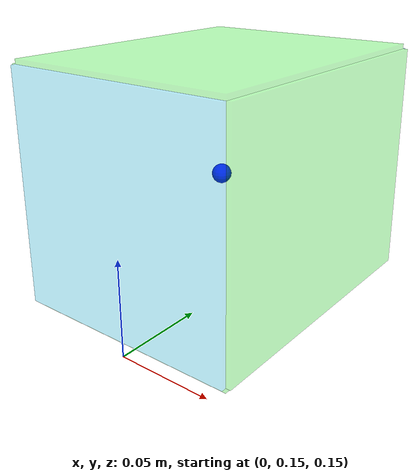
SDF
<?xml version="1.0"?>
<sdf version="1.8">
  <model name="drawing_surface">
    <!-- 3D Workspace Visualization Box -->
    <pose>0 0 0 0 0 0</pose>
    <static>true</static>

    <!-- Workspace bounds (green wireframe) -->

    <!-- Top border (Z = 28cm) -->
    <link name="top_border">
      <pose>0 0.225 0.28 0 0 0</pose>
      <visual name="top_border_visual">
        <geometry>
          <box>
            <size>0.12 0.15 0.005</size>  <!-- 12cm x 15cm x 0.5cm -->
          </box>
        </geometry>
        <material>
          <ambient>0.0 1.0 0.0 0.3</ambient>
          <diffuse>0.0 1.0 0.0 0.3</diffuse>
        </material>
      </visual>
    </link>

    <!-- Bottom border (Z = 16cm) -->
    <link name="bottom_border">
      <pose>0 0.225 0.16 0 0 0</pose>
      <visual name="bottom_border_visual">
        <geometry>
          <box>
            <size>0.12 0.15 0.005</size>
          </box>
        </geometry>
        <material>
          <ambient>0.0 1.0 0.0 0.3</ambient>
          <diffuse>0.0 1.0 0.0 0.3</diffuse>
        </material>
      </visual>
    </link>

    <!-- Left border (X = -6cm) -->
    <link name="left_border">
      <pose>-0.06 0.225 0.22 0 0 0</pose>
      <visual name="left_border_visual">
        <geometry>
          <box>
            <size>0.005 0.15 0.12</size>  <!-- 0.5cm x 15cm x 12cm -->
          </box>
        </geometry>
        <material>
          <ambient>0.0 1.0 0.0 0.3</ambient>
          <diffuse>0.0 1.0 0.0 0.3</diffuse>
        </material>
      </visual>
    </link>

    <!-- Right border (X = +6cm) -->
    <link name="right_border">
      <pose>0.06 0.225 0.22 0 0 0</pose>
      <visual name="right_border_visual">
        <geometry>
          <box>
            <size>0.005 0.15 0.12</size>
          </box>
        </geometry>
        <material>
          <ambient>0.0 1.0 0.0 0.3</ambient>
          <diffuse>0.0 1.0 0.0 0.3</diffuse>
        </material>
      </visual>
    </link>

    <!-- Front border (Y = -15cm, closer to robot) -->
    <link name="front_border">
      <pose>0 0.15 0.22 0 0 0</pose>
      <visual name="front_border_visual">
        <geometry>
          <box>
            <size>0.12 0.005 0.12</size>
          </box>
        </geometry>
        <material>
          <ambient>0.0 0.8 1.0 0.3</ambient>  <!-- Cyan for front -->
          <diffuse>0.0 0.8 1.0 0.3</diffuse>
        </material>
      </visual>
    </link>

    <!-- Back border (Y = -30cm, further from robot) -->
    <link name="back_border">
      <pose>0 0.30 0.22 0 0 0</pose>
      <visual name="back_border_visual">
        <geometry>
          <box>
            <size>0.12 0.005 0.12</size>
          </box>
        </geometry>
        <material>
          <ambient>0.0 0.8 1.0 0.3</ambient>  <!-- Cyan for back -->
          <diffuse>0.0 0.8 1.0 0.3</diffuse>
        </material>
      </visual>
    </link>

    <!-- Center marker for reference -->
    <link name="center_marker">
      <pose>0 0.225 0.22 0 0 0</pose>
      <visual name="center_marker_visual">
        <geometry>
          <sphere>
            <radius>0.005</radius>
          </sphere>
        </geometry>
        <material>
          <ambient>0.0 0.0 1.0 1.0</ambient>  <!-- Blue -->
          <diffuse>0.0 0.0 1.0 1.0</diffuse>
        </material>
      </visual>
    </link>

  </model>
</sdf>
